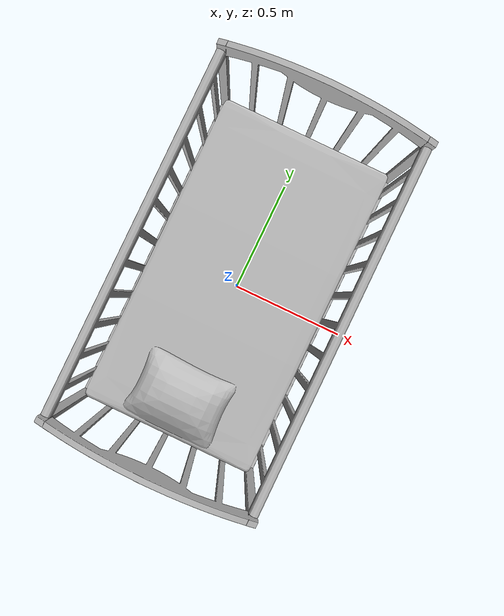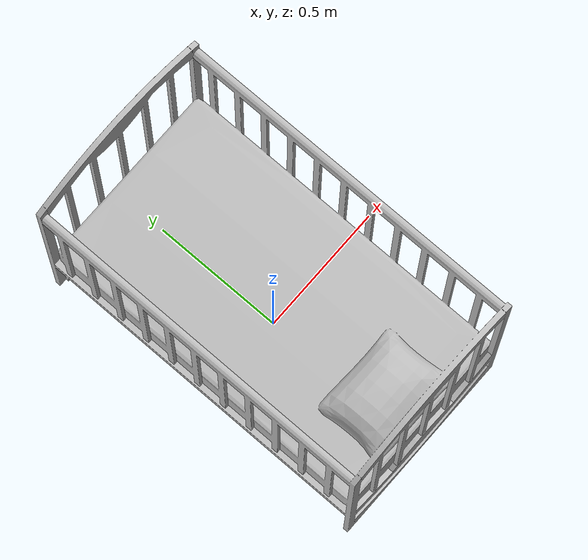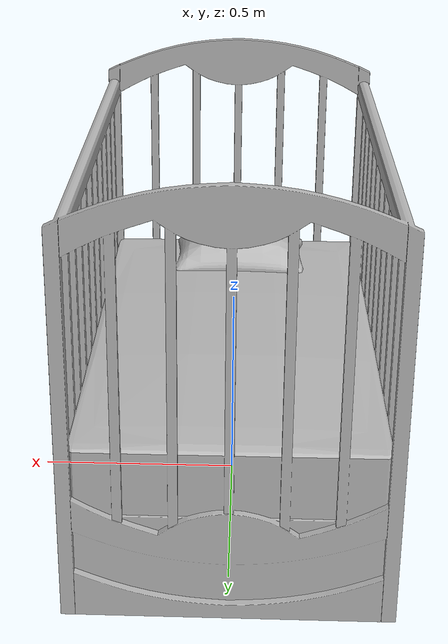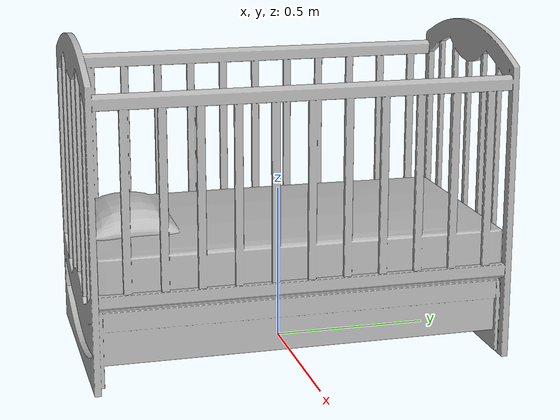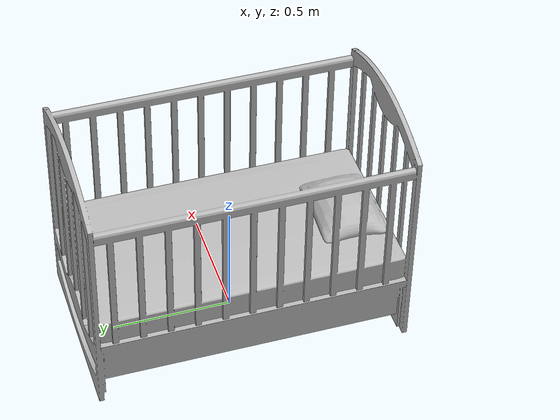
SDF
<?xml version='1.0'?>
<sdf version='1.4'>
  <model name='190'>
    <pose>0 0 0 0 0 0</pose>
    <static>true</static>
    <link name='link'>
      <collision name='collision'>
        <pose>0 0 0 0 0 0</pose>
        <geometry>
          <box>
            <size>0.750013 1.30982 2</size>
          </box>
        </geometry>
      </collision>
      <visual name='visual'>
        <pose>0 0 0 0 0 0</pose>
        <geometry>
          <mesh><uri>model://190/190.dae</uri></mesh>
        </geometry>
      </visual>
    </link>
  </model>
</sdf>
